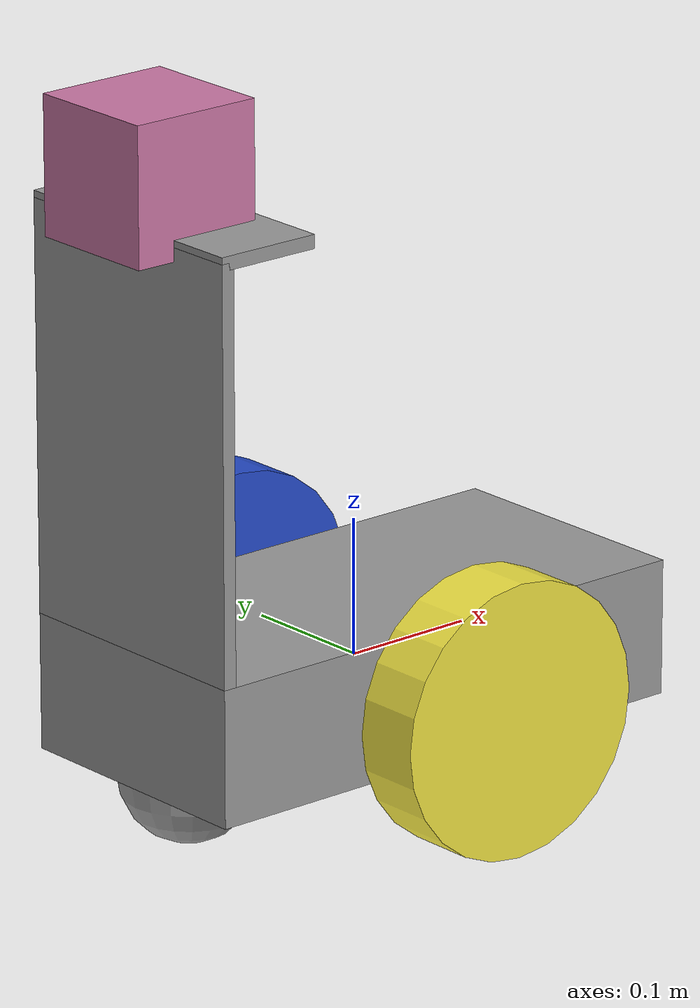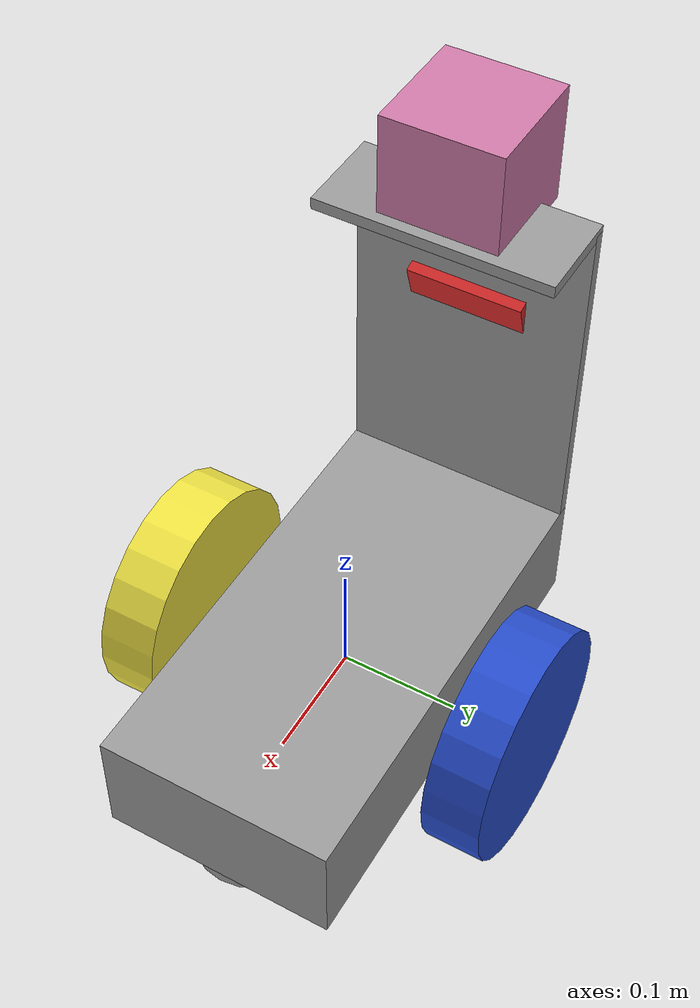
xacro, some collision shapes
<?xml version="1.0" encoding="UTF-8"?>
<robot xmlns:xacro="http://www.ros.org/wiki/xacro" name="badr_bot">
   <xacro:include filename="$(find slam_project)/urdf/badr_bot.gazebo" />
   <link name="robot_footprint" />
   <joint name="robot_footprint_joint" type="fixed">
      <origin xyz="0 0 0" rpy="0 0 0" />
      <parent link="robot_footprint" />
      <child link="chassis" />
   </joint>
   <link name="chassis">
      <pose>0 0 0.1 0 0 0</pose>
      <inertial>
         <mass value="15.0" />
         <origin xyz="0.0 0 0" rpy=" 0 0 0" />
         <inertia ixx="0.1" ixy="0" ixz="0" iyy="0.1" iyz="0" izz="0.1" />
      </inertial>
      <collision name="collision">
         <origin xyz="0 0 0" rpy=" 0 0 0" />
         <geometry>
            <box size=".4 .2 .1" />
         </geometry>
      </collision>
      <visual name="chassis_visual">
         <origin xyz="0 0 0" rpy=" 0 0 0" />
         <geometry>
            <box size=".4 .2 .1" />
         </geometry>
      </visual>

      <collision name="collision_top">
         <origin xyz="-0.195 0 0.2" rpy=" 0 0 0" />
         <geometry>
            <box size=".01 .2 .3" />
         </geometry>
      </collision>
      <visual name="chassis_visual_top">
         <origin xyz="-0.195 0 0.2" rpy=" 0 0 0" />
         <geometry>
            <box size=".01 .2 .3" />
         </geometry>
      </visual>

      <collision name="collision_top_fo">
         <origin xyz="-0.16 0 0.35" rpy=" 0 0 0" />
         <geometry>
            <box size=".08 .2 .01" />
         </geometry>
      </collision>
      <visual name="chassis_visual_top_fo">
         <origin xyz="-0.16 0 0.35" rpy=" 0 0 0" />
         <geometry>
            <box size=".08 .2 .01" />
         </geometry>
      </visual>

      <collision name="back_caster_collision">
         <origin xyz="-0.15 0 -0.05" rpy=" 0 0 0" />
         <geometry>
            <sphere radius="0.0499" />
         </geometry>
      </collision>
      <visual name="back_caster_visual">
         <origin xyz="-0.15 0 -0.05" rpy=" 0 0 0" />
         <geometry>
            <sphere radius="0.05" />
         </geometry>
      </visual>
      <collision name="front_caster_collision">
         <origin xyz="0.15 0 -0.05" rpy=" 0 0 0" />
         <geometry>
            <sphere radius="0.0499" />
         </geometry>
      </collision>
      <visual name="front_caster_visual">
         <origin xyz="0.15 0 -0.05" rpy=" 0 0 0" />
         <geometry>
            <sphere radius="0.05" />
         </geometry>
      </visual>
   </link>
   <link name="left_wheel">
      <inertial>
         <mass value="5.0" />
         <origin xyz="0.0 0 0" rpy=" 0 1.5707 1.5707" />
         <inertia ixx="0.1" ixy="0" ixz="0" iyy="0.1" iyz="0" izz="0.1" />
      </inertial>
      <collision name="collision">
         <origin xyz="0.0 0 0" rpy=" 0 1.5707 1.5707" />
         <geometry>
            <cylinder length="0.05" radius="0.1" />
         </geometry>
      </collision>
      <visual name="wheel_visual">
         <origin xyz="0.0 0 0" rpy=" 0 1.5707 1.5707" />
         <geometry>
            <cylinder length="0.05" radius="0.1" />
         </geometry>
      </visual>
   </link>
   <joint type="continuous" name="left_wheel_hinge">
      <origin xyz="0 0.15 0" rpy="0 0 0" />
      <child link="left_wheel" />
      <parent link="chassis" />
      <axis xyz="0 1 0" rpy="0 0 0" />
      <limit effort="10000" velocity="1000" />
      <joint_properties damping="1.0" friction="1.0" />
   </joint>
   <link name="right_wheel">
      <inertial>
         <mass value="5.0" />
         <origin xyz="0.0 0 0" rpy=" 0 1.5707 1.5707" />
         <inertia ixx="0.1" ixy="0" ixz="0" iyy="0.1" iyz="0" izz="0.1" />
      </inertial>
      <collision name="collision">
         <origin xyz="0.0 0 0" rpy=" 0 1.5707 1.5707" />
         <geometry>
            <cylinder length="0.05" radius="0.1" />
         </geometry>
      </collision>
      <visual name="wheel_visual">
         <origin xyz="0.0 0 0" rpy=" 0 1.5707 1.5707" />
         <geometry>
            <cylinder length="0.05" radius="0.1" />
         </geometry>
      </visual>
   </link>
   <joint type="continuous" name="right_wheel_hinge">
      <origin xyz="0 -0.15 0" rpy="0 0 0" />
      <child link="right_wheel" />
      <parent link="chassis" />
      <axis xyz="0 1 0" rpy="0 0 0" />
      <limit effort="10000" velocity="1000" />
      <joint_properties damping="1.0" friction="1.0" />
   </joint>
   <link name="camera">
      <inertial>
         <mass value="0.1" />
         <origin xyz="0.0 0 0" rpy=" 0 0 0" />
         <inertia ixx="1e-6" ixy="0" ixz="0" iyy="1e-6" iyz="0" izz="1e-6" />
      </inertial>
      <collision name="collision">
         <origin xyz="0.0 0 0" rpy=" 0 0.3 0" />
         <geometry>
            <box size="0.01 0.1 0.03" />
         </geometry>
      </collision>
      <visual name="camera_visual">
         <origin xyz="0.0 0 0" rpy=" 0 0.3 0" />
         <geometry>
            <box size="0.01 0.1 0.03" />
         </geometry>
      </visual>
   </link>
   <joint type="fixed" name="camera_joint">
      <origin xyz="-0.19 0 0.25" rpy="0 0 0" />
      <child link="camera" />
      <parent link="chassis" />
   </joint>

   <link name="camera_rgbd_frame"></link>

   <joint name="camera_rgbd_joint" type="fixed">
    <origin xyz="0 0 0" rpy="-${pi/2} 0 -${pi/2}"/>
    <parent link="camera"/>
    <child link="camera_rgbd_frame"/>
  </joint>

   <link name='hokuyo'>
      <inertial>
          <mass value="0.1"/>
          <origin xyz="0.0 0 0" rpy=" 0 0 0"/>
          <inertia ixx="1e-6" ixy="0" ixz="0" iyy="1e-6" iyz="0" izz="1e-6"/>
      </inertial>

      <collision name='collision'>
          <origin xyz="0.0 0 0" rpy=" 0 0 0"/>
          <geometry>
             <box size="0.1 0.1 0.1"/>
          </geometry>
      </collision>

      <visual name='hokuyo_visual'>
          <origin xyz="0.0 0 0" rpy=" 0 0 0"/>
          <geometry>
            <mesh filename="package://slam_project/meshes/hokuyo.dae"/>
          </geometry>
      </visual>
    </link>
    <joint type="fixed" name="hokuyo_joint">
      <origin xyz="-0.18 0.0 0.39" rpy="0 0 0"/>
      <child link="hokuyo"/>
      <parent link="chassis"/>
    </joint>
</robot>
